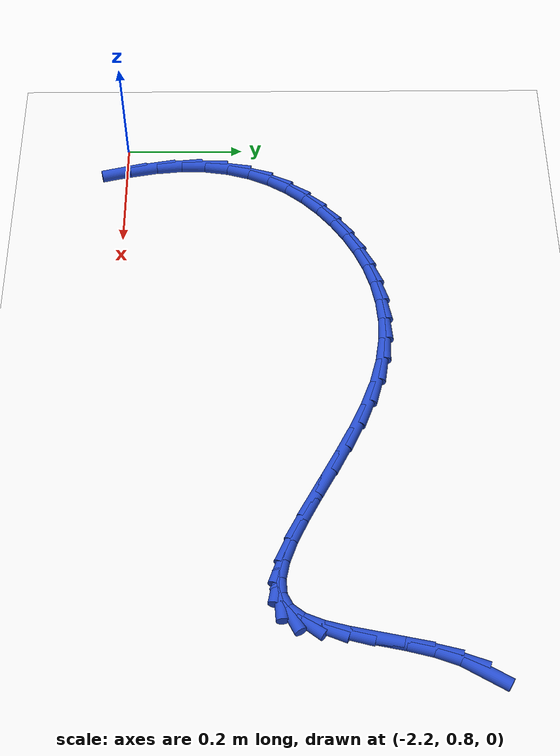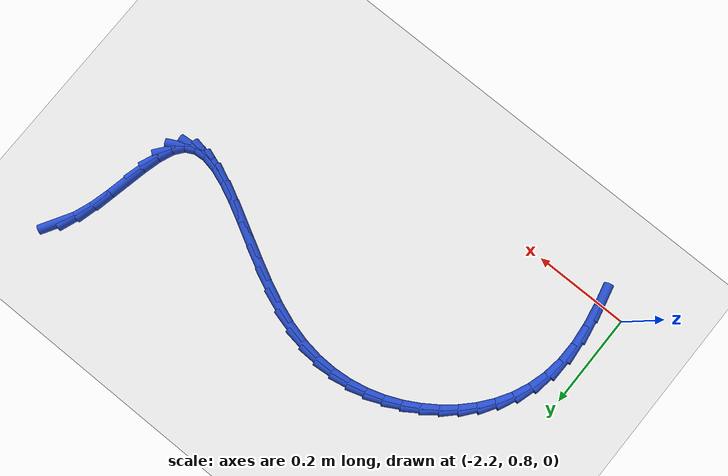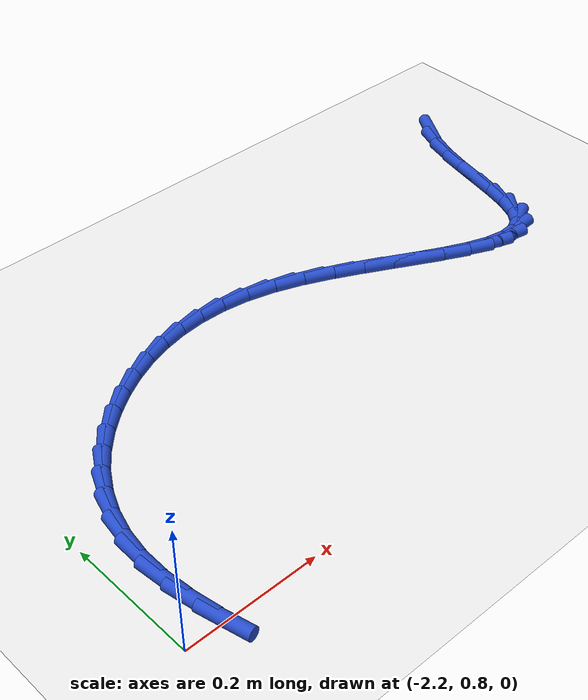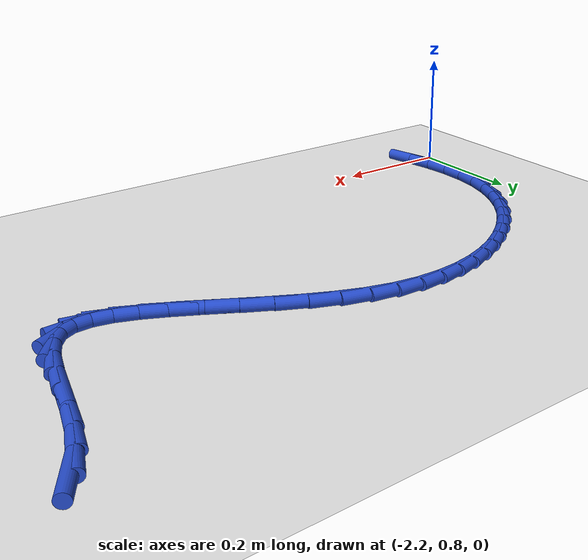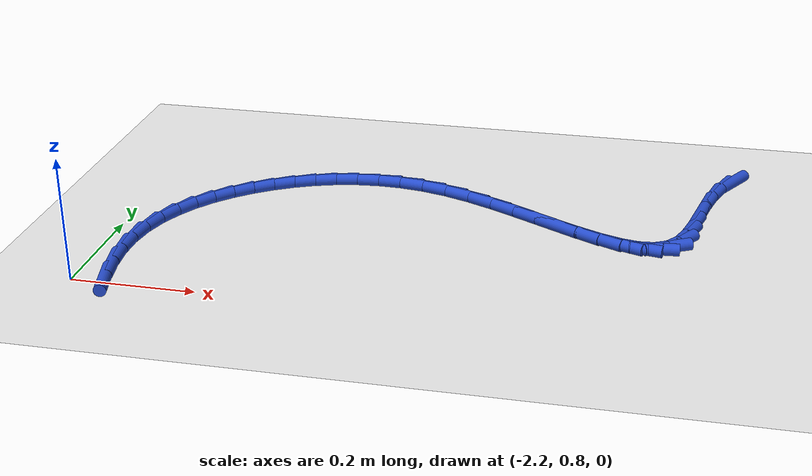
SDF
<sdf version="1.6">
 <world name="default">
  <model name="ground_plane">
   <static>1</static>
   <link name="link">
    <collision name="collision">
     <geometry><plane><normal>0 0 1</normal><size>100 100</size></plane></geometry>
     <surface><friction><ode><mu>100</mu><mu2>50</mu2></ode></friction></surface>
    </collision>
    <visual name="visual">
     <cast_shadows>0</cast_shadows>
     <geometry><plane><normal>0 0 1</normal><size>100 100</size></plane></geometry>
     <material>
      <script><uri>file://media/materials/scripts/gazebo.material</uri><name>Gazebo/WhiteGlow</name></script>
     </material>
    </visual>
   </link>
  </model>
  <model name="line">
   <link name="link_57">
    <pose>-1.2119244064197976 1.3524282697982302 0.01 0 1.57 1.0406040182301841</pose>
    <collision name="collision">
     <geometry><cylinder><radius>0.01</radius><length>0.08</length></cylinder></geometry>
    </collision>
    <visual name="visual">
     <material>
      <script><name>Gazebo/Blue</name><uri>file://media/materials/scripts/gazebo.material</uri></script>
     </material>
     <geometry><cylinder><radius>0.01</radius><length>0.08</length></cylinder></geometry>
    </visual>
   </link>
   <link name="link_58">
    <pose>-1.2304061120478067 1.3208989586269257 0.01 0 1.57 1.2165703795871112</pose>
    <collision name="collision">
     <geometry><cylinder><radius>0.01</radius><length>0.08</length></cylinder></geometry>
    </collision>
    <visual name="visual">
     <material>
      <script><name>Gazebo/Blue</name><uri>file://media/materials/scripts/gazebo.material</uri></script>
     </material>
     <geometry><cylinder><radius>0.01</radius><length>0.08</length></cylinder></geometry>
    </visual>
   </link>
   <link name="link_59">
    <pose>-1.2441624877663373 1.2837019675298964 0.01 0 1.57 1.3171798967521018</pose>
    <collision name="collision">
     <geometry><cylinder><radius>0.01</radius><length>0.08</length></cylinder></geometry>
    </collision>
    <visual name="visual">
     <material>
      <script><name>Gazebo/Blue</name><uri>file://media/materials/scripts/gazebo.material</uri></script>
     </material>
     <geometry><cylinder><radius>0.01</radius><length>0.08</length></cylinder></geometry>
    </visual>
   </link>
   <link name="link_60">
    <pose>-1.2546486711285703 1.2432456570280275 0.01 0 1.57 1.3637820003790322</pose>
    <collision name="collision">
     <geometry><cylinder><radius>0.01</radius><length>0.08</length></cylinder></geometry>
    </collision>
    <visual name="visual">
     <material>
      <script><name>Gazebo/Blue</name><uri>file://media/materials/scripts/gazebo.material</uri></script>
     </material>
     <geometry><cylinder><radius>0.01</radius><length>0.08</length></cylinder></geometry>
    </visual>
   </link>
   <link name="link_61">
    <pose>-1.2633232184867444 1.2019428336053393 0.01 0 1.57 1.3643634696790135</pose>
    <collision name="collision">
     <geometry><cylinder><radius>0.01</radius><length>0.08</length></cylinder></geometry>
    </collision>
    <visual name="visual">
     <material>
      <script><name>Gazebo/Blue</name><uri>file://media/materials/scripts/gazebo.material</uri></script>
     </material>
     <geometry><cylinder><radius>0.01</radius><length>0.08</length></cylinder></geometry>
    </visual>
   </link>
   <link name="link_62">
    <pose>-1.2716446861930983 1.1622063037458545 0.01 0 1.57 1.3130255601070009</pose>
    <collision name="collision">
     <geometry><cylinder><radius>0.01</radius><length>0.08</length></cylinder></geometry>
    </collision>
    <visual name="visual">
     <material>
      <script><name>Gazebo/Blue</name><uri>file://media/materials/scripts/gazebo.material</uri></script>
     </material>
     <geometry><cylinder><radius>0.01</radius><length>0.08</length></cylinder></geometry>
    </visual>
   </link>
   <link name="link_63">
    <pose>-1.2810716305998713 1.1264488739335936 0.01 0 1.57 1.1831251299141767</pose>
    <collision name="collision">
     <geometry><cylinder><radius>0.01</radius><length>0.08</length></cylinder></geometry>
    </collision>
    <visual name="visual">
     <material>
      <script><name>Gazebo/Blue</name><uri>file://media/materials/scripts/gazebo.material</uri></script>
     </material>
     <geometry><cylinder><radius>0.01</radius><length>0.08</length></cylinder></geometry>
    </visual>
   </link>
   <link name="link_64">
    <pose>-1.293062608059302 1.0970833506525801 0.01 0 1.57 0.9095397740615421</pose>
    <collision name="collision">
     <geometry><cylinder><radius>0.01</radius><length>0.08</length></cylinder></geometry>
    </collision>
    <visual name="visual">
     <material>
      <script><name>Gazebo/Blue</name><uri>file://media/materials/scripts/gazebo.material</uri></script>
     </material>
     <geometry><cylinder><radius>0.01</radius><length>0.08</length></cylinder></geometry>
    </visual>
   </link>
   <link name="link_65">
    <pose>-1.3090702495008555 1.0765111571392236 0.01 0 1.57 0.4706465247583107</pose>
    <collision name="collision">
     <geometry><cylinder><radius>0.01</radius><length>0.08</length></cylinder></geometry>
    </collision>
    <visual name="visual">
     <material>
      <script><name>Gazebo/Blue</name><uri>file://media/materials/scripts/gazebo.material</uri></script>
     </material>
     <geometry><cylinder><radius>0.01</radius><length>0.08</length></cylinder></geometry>
    </visual>
   </link>
   <link name="link_66">
    <pose>-1.3299094614297704 1.065908593072264 0.01 0 1.57 0.0694172365579332</pose>
    <collision name="collision">
     <geometry><cylinder><radius>0.01</radius><length>0.08</length></cylinder></geometry>
    </collision>
    <visual name="visual">
     <material>
      <script><name>Gazebo/Blue</name><uri>file://media/materials/scripts/gazebo.material</uri></script>
     </material>
     <geometry><cylinder><radius>0.01</radius><length>0.08</length></cylinder></geometry>
    </visual>
   </link>
   <link name="link_67">
    <pose>-1.3551970848452408 1.0641503710822984 0.01 0 1.57 -0.19287661218664895</pose>
    <collision name="collision">
     <geometry><cylinder><radius>0.01</radius><length>0.08</length></cylinder></geometry>
    </collision>
    <visual name="visual">
     <material>
      <script><name>Gazebo/Blue</name><uri>file://media/materials/scripts/gazebo.material</uri></script>
     </material>
     <geometry><cylinder><radius>0.01</radius><length>0.08</length></cylinder></geometry>
    </visual>
   </link>
   <link name="link_68">
    <pose>-1.384417798149253 1.069857308065134 0.01 0 1.57 -0.34672301196957256</pose>
    <collision name="collision">
     <geometry><cylinder><radius>0.01</radius><length>0.08</length></cylinder></geometry>
    </collision>
    <visual name="visual">
     <material>
      <script><name>Gazebo/Blue</name><uri>file://media/materials/scripts/gazebo.material</uri></script>
     </material>
     <geometry><cylinder><radius>0.01</radius><length>0.08</length></cylinder></geometry>
    </visual>
   </link>
   <link name="link_69">
    <pose>-1.4170562797437918 1.0816502209165775 0.01 0 1.57 -0.43463689084163853</pose>
    <collision name="collision">
     <geometry><cylinder><radius>0.01</radius><length>0.08</length></cylinder></geometry>
    </collision>
    <visual name="visual">
     <material>
      <script><name>Gazebo/Blue</name><uri>file://media/materials/scripts/gazebo.material</uri></script>
     </material>
     <geometry><cylinder><radius>0.01</radius><length>0.08</length></cylinder></geometry>
    </visual>
   </link>
   <link name="link_70">
    <pose>-1.4525972080308454 1.0981499265324375 0.01 0 1.57 -0.48169033545354895</pose>
    <collision name="collision">
     <geometry><cylinder><radius>0.01</radius><length>0.08</length></cylinder></geometry>
    </collision>
    <visual name="visual">
     <material>
      <script><name>Gazebo/Blue</name><uri>file://media/materials/scripts/gazebo.material</uri></script>
     </material>
     <geometry><cylinder><radius>0.01</radius><length>0.08</length></cylinder></geometry>
    </visual>
   </link>
   <link name="link_71">
    <pose>-1.490525261412398 1.1179772418085203 0.01 0 1.57 -0.500637978189173</pose>
    <collision name="collision">
     <geometry><cylinder><radius>0.01</radius><length>0.08</length></cylinder></geometry>
    </collision>
    <visual name="visual">
     <material>
      <script><name>Gazebo/Blue</name><uri>file://media/materials/scripts/gazebo.material</uri></script>
     </material>
     <geometry><cylinder><radius>0.01</radius><length>0.08</length></cylinder></geometry>
    </visual>
   </link>
   <link name="link_72">
    <pose>-1.5303251182904374 1.139752983640634 0.01 0 1.57 -0.49739850546302883</pose>
    <collision name="collision">
     <geometry><cylinder><radius>0.01</radius><length>0.08</length></cylinder></geometry>
    </collision>
    <visual name="visual">
     <material>
      <script><name>Gazebo/Blue</name><uri>file://media/materials/scripts/gazebo.material</uri></script>
     </material>
     <geometry><cylinder><radius>0.01</radius><length>0.08</length></cylinder></geometry>
    </visual>
   </link>
   <link name="link_73">
    <pose>-1.5714814570669482 1.1620979689245847 0.01 0 1.57 -0.47381111519954383</pose>
    <collision name="collision">
     <geometry><cylinder><radius>0.01</radius><length>0.08</length></cylinder></geometry>
    </collision>
    <visual name="visual">
     <material>
      <script><name>Gazebo/Blue</name><uri>file://media/materials/scripts/gazebo.material</uri></script>
     </material>
     <geometry><cylinder><radius>0.01</radius><length>0.08</length></cylinder></geometry>
    </visual>
   </link>
   <link name="link_74">
    <pose>-1.6134789561439178 1.1836330145561809 0.01 0 1.57 -0.42874111548506816</pose>
    <collision name="collision">
     <geometry><cylinder><radius>0.01</radius><length>0.08</length></cylinder></geometry>
    </collision>
    <visual name="visual">
     <material>
      <script><name>Gazebo/Blue</name><uri>file://media/materials/scripts/gazebo.material</uri></script>
     </material>
     <geometry><cylinder><radius>0.01</radius><length>0.08</length></cylinder></geometry>
    </visual>
   </link>
   <link name="link_75">
    <pose>-1.6558022939233306 1.202978937431229 0.01 0 1.57 -0.35830077747708283</pose>
    <collision name="collision">
     <geometry><cylinder><radius>0.01</radius><length>0.08</length></cylinder></geometry>
    </collision>
    <visual name="visual">
     <material>
      <script><name>Gazebo/Blue</name><uri>file://media/materials/scripts/gazebo.material</uri></script>
     </material>
     <geometry><cylinder><radius>0.01</radius><length>0.08</length></cylinder></geometry>
    </visual>
   </link>
   <link name="link_76">
    <pose>-1.6979361488071745 1.2187565544455368 0.01 0 1.57 -0.2584077429415375</pose>
    <collision name="collision">
     <geometry><cylinder><radius>0.01</radius><length>0.08</length></cylinder></geometry>
    </collision>
    <visual name="visual">
     <material>
      <script><name>Gazebo/Blue</name><uri>file://media/materials/scripts/gazebo.material</uri></script>
     </material>
     <geometry><cylinder><radius>0.01</radius><length>0.08</length></cylinder></geometry>
    </visual>
   </link>
   <link name="link_77">
    <pose>-1.73939469624492 1.2297147668068893 0.01 0 1.57 -0.14523502870412947</pose>
    <collision name="collision">
     <geometry><cylinder><radius>0.01</radius><length>0.08</length></cylinder></geometry>
    </collision>
    <visual name="visual">
     <material>
      <script><name>Gazebo/Blue</name><uri>file://media/materials/scripts/gazebo.material</uri></script>
     </material>
     <geometry><cylinder><radius>0.01</radius><length>0.08</length></cylinder></geometry>
    </visual>
   </link>
   <link name="link_78">
    <pose>-1.779931955581645 1.2356439440383749 0.01 0 1.57 -0.030309355430132568</pose>
    <collision name="collision">
     <geometry><cylinder><radius>0.01</radius><length>0.08</length></cylinder></geometry>
    </collision>
    <visual name="visual">
     <material>
      <script><name>Gazebo/Blue</name><uri>file://media/materials/scripts/gazebo.material</uri></script>
     </material>
     <geometry><cylinder><radius>0.01</radius><length>0.08</length></cylinder></geometry>
    </visual>
   </link>
   <link name="link_79">
    <pose>-1.8194186293638794 1.2368411262912111 0.01 0 1.57 0.08423241091682816</pose>
    <collision name="collision">
     <geometry><cylinder><radius>0.01</radius><length>0.08</length></cylinder></geometry>
    </collision>
    <visual name="visual">
     <material>
      <script><name>Gazebo/Blue</name><uri>file://media/materials/scripts/gazebo.material</uri></script>
     </material>
     <geometry><cylinder><radius>0.01</radius><length>0.08</length></cylinder></geometry>
    </visual>
   </link>
   <link name="link_80">
    <pose>-1.8577261986680003 1.2336067343078492 0.01 0 1.57 0.19650029187158013</pose>
    <collision name="collision">
     <geometry><cylinder><radius>0.01</radius><length>0.08</length></cylinder></geometry>
    </collision>
    <visual name="visual">
     <material>
      <script><name>Gazebo/Blue</name><uri>file://media/materials/scripts/gazebo.material</uri></script>
     </material>
     <geometry><cylinder><radius>0.01</radius><length>0.08</length></cylinder></geometry>
    </visual>
   </link>
   <link name="link_81">
    <pose>-1.8947261445703885 1.2262411888307407 0.01 0 1.57 0.30499915164944663</pose>
    <collision name="collision">
     <geometry><cylinder><radius>0.01</radius><length>0.08</length></cylinder></geometry>
    </collision>
    <visual name="visual">
     <material>
      <script><name>Gazebo/Blue</name><uri>file://media/materials/scripts/gazebo.material</uri></script>
     </material>
     <geometry><cylinder><radius>0.01</radius><length>0.08</length></cylinder></geometry>
    </visual>
   </link>
   <link name="link_82">
    <pose>-1.9302899481474218 1.2150449106023384 0.01 0 1.57 0.4087500445699354</pose>
    <collision name="collision">
     <geometry><cylinder><radius>0.01</radius><length>0.08</length></cylinder></geometry>
    </collision>
    <visual name="visual">
     <material>
      <script><name>Gazebo/Blue</name><uri>file://media/materials/scripts/gazebo.material</uri></script>
     </material>
     <geometry><cylinder><radius>0.01</radius><length>0.08</length></cylinder></geometry>
    </visual>
   </link>
   <link name="link_83">
    <pose>-1.9642890904754797 1.2003183203650933 0.01 0 1.57 0.5073048521241948</pose>
    <collision name="collision">
     <geometry><cylinder><radius>0.01</radius><length>0.08</length></cylinder></geometry>
    </collision>
    <visual name="visual">
     <material>
      <script><name>Gazebo/Blue</name><uri>file://media/materials/scripts/gazebo.material</uri></script>
     </material>
     <geometry><cylinder><radius>0.01</radius><length>0.08</length></cylinder></geometry>
    </visual>
   </link>
   <link name="link_84">
    <pose>-1.9965950526309406 1.182361838861458 0.01 0 1.57 0.6006948602216446</pose>
    <collision name="collision">
     <geometry><cylinder><radius>0.01</radius><length>0.08</length></cylinder></geometry>
    </collision>
    <visual name="visual">
     <material>
      <script><name>Gazebo/Blue</name><uri>file://media/materials/scripts/gazebo.material</uri></script>
     </material>
     <geometry><cylinder><radius>0.01</radius><length>0.08</length></cylinder></geometry>
    </visual>
   </link>
   <link name="link_85">
    <pose>-2.0270789768640065 1.1614755532485055 0.01 0 1.57 0.6929739014438696</pose>
    <collision name="collision">
     <geometry><cylinder><radius>0.01</radius><length>0.08</length></cylinder></geometry>
    </collision>
    <visual name="visual">
     <material>
      <script><name>Gazebo/Blue</name><uri>file://media/materials/scripts/gazebo.material</uri></script>
     </material>
     <geometry><cylinder><radius>0.01</radius><length>0.08</length></cylinder></geometry>
    </visual>
   </link>
   <link name="link_86">
    <pose>-2.0555148403286934 1.1378638884899017 0.01 0 1.57 0.7935992436770527</pose>
    <collision name="collision">
     <geometry><cylinder><radius>0.01</radius><length>0.08</length></cylinder></geometry>
    </collision>
    <visual name="visual">
     <material>
      <script><name>Gazebo/Blue</name><uri>file://media/materials/scripts/gazebo.material</uri></script>
     </material>
     <geometry><cylinder><radius>0.01</radius><length>0.08</length></cylinder></geometry>
    </visual>
   </link>
   <link name="link_87">
    <pose>-2.0814458293932905 1.1115040485239842 0.01 0 1.57 0.9043744592994106</pose>
    <collision name="collision">
     <geometry><cylinder><radius>0.01</radius><length>0.08</length></cylinder></geometry>
    </collision>
    <visual name="visual">
     <material>
      <script><name>Gazebo/Blue</name><uri>file://media/materials/scripts/gazebo.material</uri></script>
     </material>
     <geometry><cylinder><radius>0.01</radius><length>0.08</length></cylinder></geometry>
    </visual>
   </link>
   <link name="link_88">
    <pose>-2.104381610728907 1.0823402360583967 0.01 0 1.57 1.0249735651199858</pose>
    <collision name="collision">
     <geometry><cylinder><radius>0.01</radius><length>0.08</length></cylinder></geometry>
    </collision>
    <visual name="visual">
     <material>
      <script><name>Gazebo/Blue</name><uri>file://media/materials/scripts/gazebo.material</uri></script>
     </material>
     <geometry><cylinder><radius>0.01</radius><length>0.08</length></cylinder></geometry>
    </visual>
   </link>
   <link name="link_89">
    <pose>-2.123831851006654 1.0503166538007858 0.01 0 1.57 1.1538668140771362</pose>
    <collision name="collision">
     <geometry><cylinder><radius>0.01</radius><length>0.08</length></cylinder></geometry>
    </collision>
    <visual name="visual">
     <material>
      <script><name>Gazebo/Blue</name><uri>file://media/materials/scripts/gazebo.material</uri></script>
     </material>
     <geometry><cylinder><radius>0.01</radius><length>0.08</length></cylinder></geometry>
    </visual>
   </link>
   <link name="link_90">
    <pose>-2.139306216897642 1.015377504458794 0.01 0 1.57 1.2881956394146121</pose>
    <collision name="collision">
     <geometry><cylinder><radius>0.01</radius><length>0.08</length></cylinder></geometry>
    </collision>
    <visual name="visual">
     <material>
      <script><name>Gazebo/Blue</name><uri>file://media/materials/scripts/gazebo.material</uri></script>
     </material>
     <geometry><cylinder><radius>0.01</radius><length>0.08</length></cylinder></geometry>
    </visual>
   </link>
   <link name="link_91">
    <pose>-2.1503143750729805 0.9774669907400683 0.01 0 1.57 1.424034068365348</pose>
    <collision name="collision">
     <geometry><cylinder><radius>0.01</radius><length>0.08</length></cylinder></geometry>
    </collision>
    <visual name="visual">
     <material>
      <script><name>Gazebo/Blue</name><uri>file://media/materials/scripts/gazebo.material</uri></script>
     </material>
     <geometry><cylinder><radius>0.01</radius><length>0.08</length></cylinder></geometry>
    </visual>
   </link>
   <link name="link_92">
    <pose>-2.15636599220378 0.9365293153522516 0.01 0 1.57 1.5569311881967878</pose>
    <collision name="collision">
     <geometry><cylinder><radius>0.01</radius><length>0.08</length></cylinder></geometry>
    </collision>
    <visual name="visual">
     <material>
      <script><name>Gazebo/Blue</name><uri>file://media/materials/scripts/gazebo.material</uri></script>
     </material>
     <geometry><cylinder><radius>0.01</radius><length>0.08</length></cylinder></geometry>
    </visual>
   </link>
   <link name="link_93">
    <pose>-2.156976338090977 0.892511956925425 0.01 0 1.57 -1.4695296343964745</pose>
    <collision name="collision">
     <geometry><cylinder><radius>0.01</radius><length>0.08</length></cylinder></geometry>
    </collision>
    <visual name="visual">
     <material>
      <script><name>Gazebo/Blue</name><uri>file://media/materials/scripts/gazebo.material</uri></script>
     </material>
     <geometry><cylinder><radius>0.01</radius><length>0.08</length></cylinder></geometry>
    </visual>
   </link>
   <link name="link_94">
    <pose>-2.1522184032728795 0.8456884707525983 0.01 0 1.57 -1.387681385955565</pose>
    <collision name="collision">
     <geometry><cylinder><radius>0.01</radius><length>0.08</length></cylinder></geometry>
    </collision>
    <visual name="visual">
     <material>
      <script><name>Gazebo/Blue</name><uri>file://media/materials/scripts/gazebo.material</uri></script>
     </material>
     <geometry><cylinder><radius>0.01</radius><length>0.08</length></cylinder></geometry>
    </visual>
   </link>
   <link name="link_95">
    <pose>-2.143189038022 0.7969310213286132 0.01 0 1.57 -1.332346395357701</pose>
    <collision name="collision">
     <geometry><cylinder><radius>0.01</radius><length>0.08</length></cylinder></geometry>
    </collision>
    <visual name="visual">
     <material>
      <script><name>Gazebo/Blue</name><uri>file://media/materials/scripts/gazebo.material</uri></script>
     </material>
     <geometry><cylinder><radius>0.01</radius><length>0.08</length></cylinder></geometry>
    </visual>
   </link>
  </model>
 </world>
</sdf>
